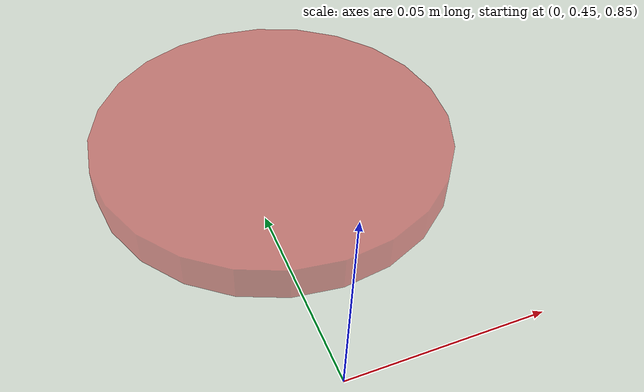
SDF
<sdf version="1.7">
 <world name="default">
  <model name="ground_plane">
   <static>1</static>
   <link name="link">
    <collision name="collision">
     <geometry><plane><normal>0 0 1</normal><size>100 100</size></plane></geometry>
     <surface>
      <contact><collide_bitmask>65535</collide_bitmask></contact>
      <friction><ode><mu>100</mu><mu2>50</mu2></ode></friction>
     </surface>
    </collision>
    <visual name="visual">
     <cast_shadows>0</cast_shadows>
     <geometry><plane><normal>0 0 1</normal><size>100 100</size></plane></geometry>
     <material>
      <script><uri>file://media/materials/scripts/gazebo.material</uri><name>Gazebo/Grey</name></script>
     </material>
    </visual>
   </link>
  </model>
  <light name="sun" type="directional">
   <pose>0 0 10 0 -0 0</pose>
   <diffuse>0.8 0.8 0.8 1</diffuse>
   <specular>0.2 0.2 0.2 1</specular>
   <attenuation>
    <range>1000</range>
    <constant>0.9</constant>
    <linear>0.01</linear>
    <quadratic>0.001</quadratic>
   </attenuation>
   <direction>-0.5 0.1 -0.9</direction>
   <spot><inner_angle>0</inner_angle><outer_angle>0</outer_angle><falloff>0</falloff></spot>
  </light>
  <gravity>0 0 -9.8</gravity>
  <magnetic_field>6e-06 2.3e-05 -4.2e-05</magnetic_field>
  <atmosphere type="adiabatic"/>
  <physics type="ode">
   <max_step_size>0.001</max_step_size>
   <real_time_factor>1</real_time_factor>
   <real_time_update_rate>1000</real_time_update_rate>
  </physics>
  <scene><ambient>0.4 0.4 0.4 1</ambient><background>0.7 0.7 0.7 1</background><shadows>1</shadows></scene>
  <spherical_coordinates>
   <surface_model>EARTH_WGS84</surface_model>
   <latitude_deg>0</latitude_deg>
   <longitude_deg>0</longitude_deg>
   <elevation>0</elevation>
   <heading_deg>0</heading_deg>
  </spherical_coordinates>
  <model name="hockey">
   <pose>0.005326 0.61748 0.855069 -5.6e-05 -4.7e-05 1.57634</pose>
   <link name="link_puck">
    <inertial>
     <mass>0.00879646</mass>
     <inertia><ixx>9.5e-07</ixx><ixy>0</ixy><ixz>0</ixz><iyy>9.5e-07</iyy><iyz>0</iyz><izz>1.76e-06</izz></inertia>
    </inertial>
    <pose>-0.09502 -0.004073 0 0 -0 0</pose>
    <visual name="visual">
     <geometry><cylinder><radius>0.05</radius><length>0.01</length></cylinder></geometry>
     <material>
      <lighting>1</lighting>
      <script><uri>file://media/materials/scripts/gazebo.material</uri><name>Gazebo/Red</name></script>
      <shader type="pixel"><normal_map>__default__</normal_map></shader>
      <emissive>0 0 0 1</emissive>
      <ambient>1 0 0 1</ambient>
      <diffuse>1 0 0 1</diffuse>
      <specular>0.1 0.1 0.1 1</specular>
     </material>
     <transparency>0.5</transparency>
    </visual>
    <collision name="collision">
     <geometry><cylinder><radius>0.05</radius><length>0.01</length></cylinder></geometry>
     <surface>
      <friction>
       <ode><mu>0.0001</mu><mu2>0.0001</mu2><fdir1>0 0 0</fdir1><slip1>0</slip1><slip2>0</slip2></ode>
       <torsional>
        <coefficient>1</coefficient>
        <patch_radius>0</patch_radius>
        <surface_radius>0</surface_radius>
        <use_patch_radius>1</use_patch_radius>
        <ode><slip>0</slip></ode>
       </torsional>
      </friction>
      <bounce><restitution_coefficient>1</restitution_coefficient><threshold>1</threshold></bounce>
      <contact>
       <collide_without_contact>0</collide_without_contact>
       <collide_without_contact_bitmask>1</collide_without_contact_bitmask>
       <collide_bitmask>1</collide_bitmask>
       <ode>
        <soft_cfm>0</soft_cfm>
        <soft_erp>0.2</soft_erp>
        <kp>10000</kp>
        <kd>0</kd>
        <max_vel>10</max_vel>
        <min_depth>0</min_depth>
       </ode>
       <bullet>
        <split_impulse>1</split_impulse>
        <split_impulse_penetration_threshold>-0.01</split_impulse_penetration_threshold>
        <soft_cfm>0</soft_cfm>
        <soft_erp>0.2</soft_erp>
        <kp>10000</kp>
        <kd>0</kd>
       </bullet>
      </contact>
     </surface>
    </collision>
   </link>
   <static>0</static>
  </model>
 </world>
</sdf>
